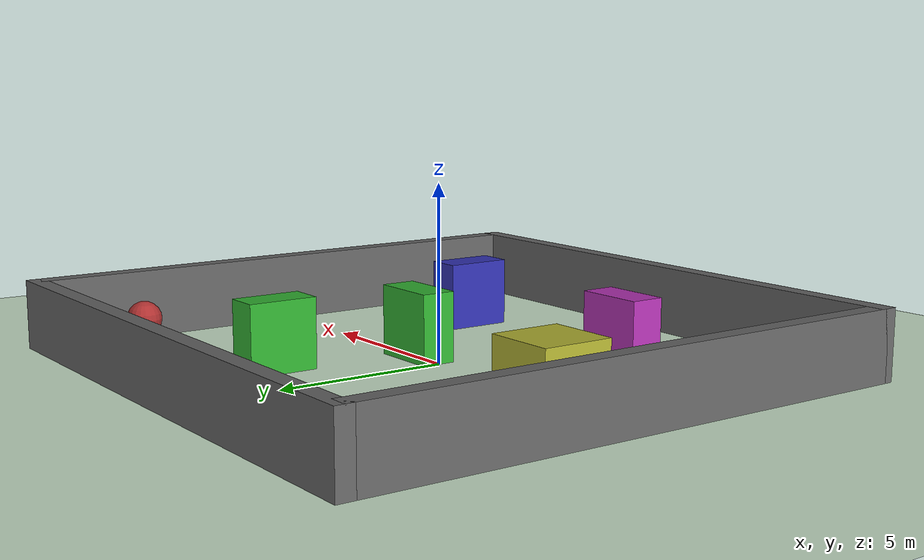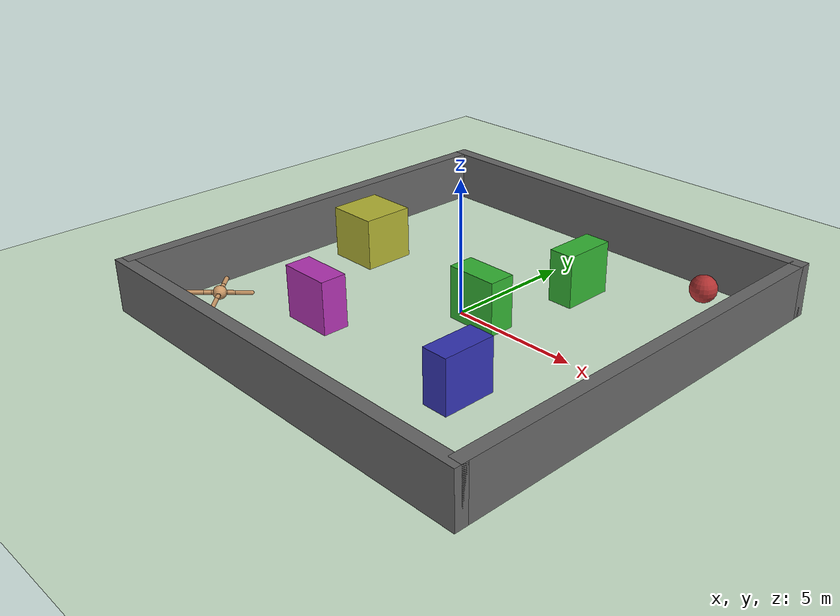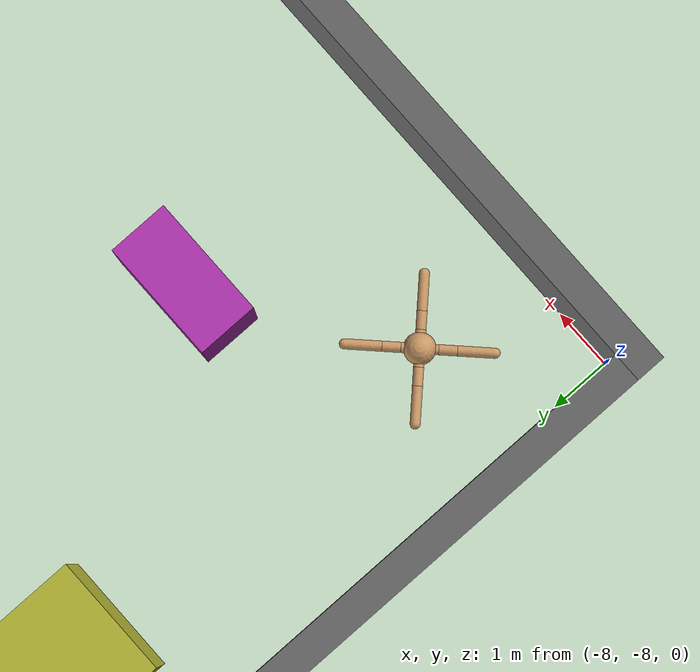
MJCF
<mujoco model="ant">
  <compiler angle="degree" coordinate="local" inertiafromgeom="true"/>
  <option integrator="RK4" timestep="0.02"/>
  <custom>
    <numeric data="0.0 0.0 0.55 1.0 0.0 0.0 0.0 0.0 1.0 0.0 -1.0 0.0 -1.0 0.0 1.0" name="init_qpos"/>
  </custom>
  <default>
    <joint armature="1" damping="1" limited="true"/>
    <geom conaffinity="0" condim="3" density="5.0" friction="1 0.5 0.5" margin="0.01" rgba="0.8 0.6 0.4 1"/>
  </default>
  <asset>
    <texture builtin="gradient" height="100" rgb1="1 1 1" rgb2="0 0 0" type="skybox" width="100"/>
    <texture builtin="flat" height="128" mark="cross" markrgb="1 1 1" name="texgeom" random="0.01" rgb1="0.8 0.6 0.4" rgb2="0.8 0.6 0.4" type="cube" width="127"/>
    <texture builtin="checker" height="100" name="texplane" rgb1="0.1 0.2 0.3" rgb2="0.2 0.3 0.4" type="2d" width="100"/>
    <material name="MatPlane" reflectance="0" shininess="1" specular="1" texrepeat="10 10" texture="texplane"/>
    <material name="geom" texture="texgeom" texuniform="true"/>
  </asset>
  <worldbody>
    <light cutoff="100" diffuse="1 1 1" dir="-0 0 -1.3" directional="true" exponent="1" pos="0 0 1.3" specular=".1 .1 .1"/>
    <geom conaffinity="1" condim="3" material="MatPlane" name="floor" pos="0 0 0" rgba="0.8 0.9 0.8 1" size="40 40 40" type="plane"/>
    <body name="torso" pos="-6 -6 0.75">
      <camera name="track" mode="trackcom" pos="0 -3 0.3" xyaxes="1 0 0 0 0 1"/>
      <geom name="torso_geom" pos="0 0 0" size="0.25" type="sphere"/>
      <joint armature="0" damping="0" limited="false" margin="0.01" name="root" pos="0 0 0" type="free"/>
      <body name="front_left_leg" pos="0 0 0">
        <geom fromto="0.0 0.0 0.0 0.2 0.2 0.0" name="aux_1_geom" size="0.08" type="capsule"/>
        <body name="aux_1" pos="0.2 0.2 0">
          <joint axis="0 0 1" name="hip_1" pos="0.0 0.0 0.0" range="-30 30" type="hinge"/>
          <geom fromto="0.0 0.0 0.0 0.2 0.2 0.0" name="left_leg_geom" size="0.08" type="capsule"/>
          <body pos="0.2 0.2 0">
            <joint axis="-1 1 0" name="ankle_1" pos="0.0 0.0 0.0" range="30 70" type="hinge"/>
            <geom fromto="0.0 0.0 0.0 0.4 0.4 0.0" name="left_ankle_geom" size="0.08" type="capsule"/>
          </body>
        </body>
      </body>
      <body name="front_right_leg" pos="0 0 0">
        <geom fromto="0.0 0.0 0.0 -0.2 0.2 0.0" name="aux_2_geom" size="0.08" type="capsule"/>
        <body name="aux_2" pos="-0.2 0.2 0">
          <joint axis="0 0 1" name="hip_2" pos="0.0 0.0 0.0" range="-30 30" type="hinge"/>
          <geom fromto="0.0 0.0 0.0 -0.2 0.2 0.0" name="right_leg_geom" size="0.08" type="capsule"/>
          <body pos="-0.2 0.2 0">
            <joint axis="1 1 0" name="ankle_2" pos="0.0 0.0 0.0" range="-70 -30" type="hinge"/>
            <geom fromto="0.0 0.0 0.0 -0.4 0.4 0.0" name="right_ankle_geom" size="0.08" type="capsule"/>
          </body>
        </body>
      </body>
      <body name="back_leg" pos="0 0 0">
        <geom fromto="0.0 0.0 0.0 -0.2 -0.2 0.0" name="aux_3_geom" size="0.08" type="capsule"/>
        <body name="aux_3" pos="-0.2 -0.2 0">
          <joint axis="0 0 1" name="hip_3" pos="0.0 0.0 0.0" range="-30 30" type="hinge"/>
          <geom fromto="0.0 0.0 0.0 -0.2 -0.2 0.0" name="back_leg_geom" size="0.08" type="capsule"/>
          <body pos="-0.2 -0.2 0">
            <joint axis="-1 1 0" name="ankle_3" pos="0.0 0.0 0.0" range="-70 -30" type="hinge"/>
            <geom fromto="0.0 0.0 0.0 -0.4 -0.4 0.0" name="third_ankle_geom" size="0.08" type="capsule"/>
          </body>
        </body>
      </body>
      <body name="right_back_leg" pos="0 0 0">
        <geom fromto="0.0 0.0 0.0 0.2 -0.2 0.0" name="aux_4_geom" size="0.08" type="capsule"/>
        <body name="aux_4" pos="0.2 -0.2 0">
          <joint axis="0 0 1" name="hip_4" pos="0.0 0.0 0.0" range="-30 30" type="hinge"/>
          <geom fromto="0.0 0.0 0.0 0.2 -0.2 0.0" name="rightback_leg_geom" size="0.08" type="capsule"/>
          <body pos="0.2 -0.2 0">
            <joint axis="1 1 0" name="ankle_4" pos="0.0 0.0 0.0" range="30 70" type="hinge"/>
            <geom fromto="0.0 0.0 0.0 0.4 -0.4 0.0" name="fourth_ankle_geom" size="0.08" type="capsule"/>
          </body>
        </body>
      </body>
    </body>

    <!-- Create Barriers -->
    <body name="east_wall" pos="8.25 0 1">
      <geom type="box" size="0.25 8.25 1" contype="1" conaffinity="1" rgba="0.4 0.4 0.4 1" />
    </body>
    <body name="north_wall" pos="0 8.25 1">
      <geom type="box" size="8.5 0.25 1" contype="1" conaffinity="1" rgba="0.4 0.4 0.4 1" />
    </body>
    <body name="west_wall" pos="-8.25 0 1">
      <geom type="box" size="0.25 8.25 1" contype="1" conaffinity="1" rgba="0.4 0.4 0.4 1" />
    </body>
    <body name="south_wall" pos="0 -8.25 1">
      <geom type="box" size="8.5 0.25 1" contype="1" conaffinity="1" rgba="0.4 0.4 0.4 1" />
    </body>

    <!-- Obstacles -->
    <body name="obstacle1" pos="2 4 1">
      <geom type="box" size="0.5 1 1" contype="1" conaffinity="1" rgba="0.2 0.7 0.2 1" />
    </body>

    <body name="obstacle2" pos="-3 -4 1">
      <geom type="box" size="1 0.5 1" contype="1" conaffinity="1" rgba="0.7 0.2 0.7 1" />
    </body>

    <body name="obstacle3" pos="-6 1 1">
      <geom type="box" size="1 1 1" contype="1" conaffinity="1" rgba="0.7 0.7 0.2 1" />
    </body>

    <body name="obstacle4" pos="4 -4 1">
      <geom type="box" size="0.5 1 1" contype="1" conaffinity="1" rgba="0.2 0.2 0.7 1" />
    </body>

    <body name="obstacle5" pos="1 0 1">
      <geom type="box" size="1 0.5 1" contype="1" conaffinity="1" rgba="0.2 0.7 0.2 1" />
    </body>

    <!-- Create goal and subgoal visualizations -->
    <body name="goal_platform" pos="6 6 1">
      <geom type="sphere" size="0.5" contype="1" conaffinity="1" rgba="0.7 0.2 0.2 1" />
    </body>

    <body name="subgoal_0" pos="0 0 0" mocap="true">
				<site type="box" size="0.5 0.5 0.002" rgba="1 0 1 0" />
		</body>
    <body name="subgoal_1" pos="0 0 0" mocap="true">
				<site type="box" size="0.5 0.5 0.002" rgba="0 1 0 0" />
		</body>

  </worldbody>
  <actuator>
    <motor ctrllimited="true" ctrlrange="-1.0 1.0" joint="hip_4" gear="15"/>
    <motor ctrllimited="true" ctrlrange="-1.0 1.0" joint="ankle_4" gear="15"/>
    <motor ctrllimited="true" ctrlrange="-1.0 1.0" joint="hip_1" gear="15"/>
    <motor ctrllimited="true" ctrlrange="-1.0 1.0" joint="ankle_1" gear="15"/>
    <motor ctrllimited="true" ctrlrange="-1.0 1.0" joint="hip_2" gear="15"/>
    <motor ctrllimited="true" ctrlrange="-1.0 1.0" joint="ankle_2" gear="15"/>
    <motor ctrllimited="true" ctrlrange="-1.0 1.0" joint="hip_3" gear="15"/>
    <motor ctrllimited="true" ctrlrange="-1.0 1.0" joint="ankle_3" gear="15"/>
  </actuator>
</mujoco>
